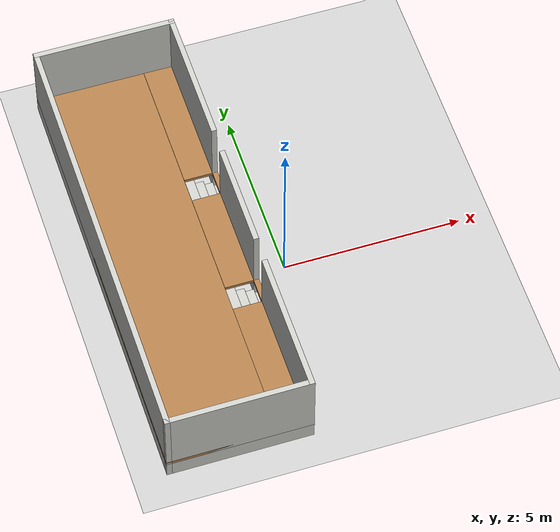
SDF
<sdf version="1.7">
 <world name="default">
  <light name="sun" type="directional">
   <pose>0 0 10 0 -0 0</pose>
   <diffuse>0.8 0.8 0.8 1</diffuse>
   <specular>0.2 0.2 0.2 1</specular>
   <attenuation>
    <range>1000</range>
    <constant>0.9</constant>
    <linear>0.01</linear>
    <quadratic>0.001</quadratic>
   </attenuation>
   <direction>-0.5 0.1 -0.9</direction>
   <spot><inner_angle>0</inner_angle><outer_angle>0</outer_angle><falloff>0</falloff></spot>
  </light>
  <model name="ground_plane">
   <static>1</static>
   <link name="link">
    <collision name="collision">
     <geometry><plane><normal>0 0 1</normal><size>100 100</size></plane></geometry>
     <surface>
      <contact><collide_bitmask>65535</collide_bitmask></contact>
      <friction><ode><mu>100</mu><mu2>50</mu2></ode></friction>
     </surface>
    </collision>
    <visual name="visual">
     <cast_shadows>0</cast_shadows>
     <geometry><plane><normal>0 0 1</normal><size>100 100</size></plane></geometry>
     <material>
      <script><uri>file://media/materials/scripts/gazebo.material</uri><name>Gazebo/Grey</name></script>
     </material>
    </visual>
   </link>
  </model>
  <gravity>0 0 -9.8</gravity>
  <magnetic_field>6e-06 2.3e-05 -4.2e-05</magnetic_field>
  <atmosphere type="adiabatic"/>
  <physics type="ode">
   <max_step_size>0.001</max_step_size>
   <real_time_factor>1</real_time_factor>
   <real_time_update_rate>1000</real_time_update_rate>
  </physics>
  <scene><ambient>0.4 0.4 0.4 1</ambient><background>0.7 0.7 0.7 1</background><shadows>1</shadows></scene>
  <spherical_coordinates>
   <surface_model>EARTH_WGS84</surface_model>
   <latitude_deg>0</latitude_deg>
   <longitude_deg>0</longitude_deg>
   <elevation>0</elevation>
   <heading_deg>0</heading_deg>
  </spherical_coordinates>
  <model name="lab_floor2_wo_door">
   <pose>-1.08693 0.967769 0 0 -0 0</pose>
   <link name="Floor_0">
    <pose>-1.796 0 0.5 0 -0 0</pose>
    <visual name="Floor_0_Visual_0">
     <pose>-0.477952 0 0.05 0 -0 0</pose>
     <geometry><box><size>3.0441 12.4 0.1</size></box></geometry>
     <material>
      <script><uri>file://media/materials/scripts/gazebo.material</uri><name>Gazebo/Wood</name></script>
      <ambient>1 1 1 1</ambient>
     </material>
     <meta><layer>1</layer></meta>
    </visual>
    <collision name="Floor_0_Collision_0">
     <geometry><box><size>3.0441 12.4 0.1</size></box></geometry>
     <pose>-0.477952 0 0.05 0 -0 0</pose>
    </collision>
    <visual name="Floor_0_Visual_1">
     <pose>1.52205 -4.20547 0.05 0 -0 0</pose>
     <geometry><box><size>0.955904 3.98906 0.1</size></box></geometry>
     <material>
      <script><uri>file://media/materials/scripts/gazebo.material</uri><name>Gazebo/Wood</name></script>
      <ambient>1 1 1 1</ambient>
     </material>
     <meta><layer>1</layer></meta>
    </visual>
    <collision name="Floor_0_Collision_1">
     <geometry><box><size>0.955904 3.98906 0.1</size></box></geometry>
     <pose>1.52205 -4.20547 0.05 0 -0 0</pose>
    </collision>
    <visual name="Floor_0_Visual_2">
     <pose>1.92505 -0.361688 0.05 0 -0 0</pose>
     <geometry><box><size>0.149904 3.6985 0.1</size></box></geometry>
     <material>
      <script><uri>file://media/materials/scripts/gazebo.material</uri><name>Gazebo/Wood</name></script>
      <ambient>1 1 1 1</ambient>
     </material>
     <meta><layer>1</layer></meta>
    </visual>
    <collision name="Floor_0_Collision_2">
     <geometry><box><size>0.149904 3.6985 0.1</size></box></geometry>
     <pose>1.92505 -0.361688 0.05 0 -0 0</pose>
    </collision>
    <visual name="Floor_0_Visual_3">
     <pose>1.04632 2.35003 0.05 0 -0 0</pose>
     <geometry><box><size>0.004439 7.69994 0.1</size></box></geometry>
     <material>
      <script><uri>file://media/materials/scripts/gazebo.material</uri><name>Gazebo/Wood</name></script>
      <ambient>1 1 1 1</ambient>
     </material>
     <meta><layer>1</layer></meta>
    </visual>
    <collision name="Floor_0_Collision_3">
     <geometry><box><size>0.004439 7.69994 0.1</size></box></geometry>
     <pose>1.04632 2.35003 0.05 0 -0 0</pose>
    </collision>
    <visual name="Floor_0_Visual_4">
     <pose>1.44932 -0.006188 0.05 0 -0 0</pose>
     <geometry><box><size>0.801561 2.9875 0.1</size></box></geometry>
     <material>
      <script><uri>file://media/materials/scripts/gazebo.material</uri><name>Gazebo/Wood</name></script>
      <ambient>1 1 1 1</ambient>
     </material>
     <meta><layer>1</layer></meta>
    </visual>
    <collision name="Floor_0_Collision_4">
     <geometry><box><size>0.801561 2.9875 0.1</size></box></geometry>
     <pose>1.44932 -0.006188 0.05 0 -0 0</pose>
    </collision>
    <visual name="Floor_0_Visual_5">
     <pose>1.92727 3.84378 0.05 0 -0 0</pose>
     <geometry><box><size>0.145465 4.71244 0.1</size></box></geometry>
     <material>
      <script><uri>file://media/materials/scripts/gazebo.material</uri><name>Gazebo/Wood</name></script>
      <ambient>1 1 1 1</ambient>
     </material>
     <meta><layer>1</layer></meta>
    </visual>
    <collision name="Floor_0_Collision_5">
     <geometry><box><size>0.145465 4.71244 0.1</size></box></geometry>
     <pose>1.92727 3.84378 0.05 0 -0 0</pose>
    </collision>
    <visual name="Floor_0_Visual_6">
     <pose>1.44932 4.19928 0.05 0 -0 0</pose>
     <geometry><box><size>0.801561 4.00144 0.1</size></box></geometry>
     <material>
      <script><uri>file://media/materials/scripts/gazebo.material</uri><name>Gazebo/Wood</name></script>
      <ambient>1 1 1 1</ambient>
     </material>
     <meta><layer>1</layer></meta>
    </visual>
    <collision name="Floor_0_Collision_6">
     <geometry><box><size>0.801561 4.00144 0.1</size></box></geometry>
     <pose>1.44932 4.19928 0.05 0 -0 0</pose>
    </collision>
   </link>
   <link name="Stairs_1">
    <visual name="Stairs_1_Visual_0">
     <pose>-0.075798 1.84306 0.083333 0 -0 -1.5708</pose>
     <geometry><box><size>0.711 0.268667 0.166667</size></box></geometry>
     <material>
      <script><uri>file://media/materials/scripts/gazebo.material</uri><name>Gazebo/CeilingTiled</name></script>
      <ambient>0.760784 0.662745 0.627451 1</ambient>
     </material>
     <meta><layer>0</layer></meta>
    </visual>
    <collision name="Stairs_1_Collision_0">
     <geometry><box><size>0.711 0.268667 0.166667</size></box></geometry>
     <pose>-0.075798 1.84306 0.083333 0 -0 -1.5708</pose>
    </collision>
    <visual name="Stairs_1_Visual_1">
     <pose>-0.344464 1.84306 0.25 0 -0 -1.5708</pose>
     <geometry><box><size>0.711 0.268667 0.166667</size></box></geometry>
     <material>
      <script><uri>file://media/materials/scripts/gazebo.material</uri><name>Gazebo/CeilingTiled</name></script>
      <ambient>0.760784 0.662745 0.627451 1</ambient>
     </material>
     <meta><layer>0</layer></meta>
    </visual>
    <collision name="Stairs_1_Collision_1">
     <geometry><box><size>0.711 0.268667 0.166667</size></box></geometry>
     <pose>-0.344464 1.84306 0.25 0 -0 -1.5708</pose>
    </collision>
    <visual name="Stairs_1_Visual_2">
     <pose>-0.613131 1.84306 0.416667 0 -0 -1.5708</pose>
     <geometry><box><size>0.711 0.268667 0.166667</size></box></geometry>
     <material>
      <script><uri>file://media/materials/scripts/gazebo.material</uri><name>Gazebo/CeilingTiled</name></script>
      <ambient>0.760784 0.662745 0.627451 1</ambient>
     </material>
     <meta><layer>0</layer></meta>
    </visual>
    <collision name="Stairs_1_Collision_2">
     <geometry><box><size>0.711 0.268667 0.166667</size></box></geometry>
     <pose>-0.613131 1.84306 0.416667 0 -0 -1.5708</pose>
    </collision>
   </link>
   <link name="Stairs_3">
    <visual name="Stairs_3_Visual_0">
     <pose>-0.080237 -1.85544 0.083333 0 -0 -1.5708</pose>
     <geometry><box><size>0.711 0.268667 0.166667</size></box></geometry>
     <material>
      <script><uri>file://media/materials/scripts/gazebo.material</uri><name>Gazebo/CeilingTiled</name></script>
      <ambient>0.760784 0.662745 0.627451 1</ambient>
     </material>
     <meta><layer>0</layer></meta>
    </visual>
    <collision name="Stairs_3_Collision_0">
     <geometry><box><size>0.711 0.268667 0.166667</size></box></geometry>
     <pose>-0.080237 -1.85544 0.083333 0 -0 -1.5708</pose>
    </collision>
    <visual name="Stairs_3_Visual_1">
     <pose>-0.348904 -1.85544 0.25 0 -0 -1.5708</pose>
     <geometry><box><size>0.711 0.268667 0.166667</size></box></geometry>
     <material>
      <script><uri>file://media/materials/scripts/gazebo.material</uri><name>Gazebo/CeilingTiled</name></script>
      <ambient>0.760784 0.662745 0.627451 1</ambient>
     </material>
     <meta><layer>0</layer></meta>
    </visual>
    <collision name="Stairs_3_Collision_1">
     <geometry><box><size>0.711 0.268667 0.166667</size></box></geometry>
     <pose>-0.348904 -1.85544 0.25 0 -0 -1.5708</pose>
    </collision>
    <visual name="Stairs_3_Visual_2">
     <pose>-0.61757 -1.85544 0.416667 0 -0 -1.5708</pose>
     <geometry><box><size>0.711 0.268667 0.166667</size></box></geometry>
     <material>
      <script><uri>file://media/materials/scripts/gazebo.material</uri><name>Gazebo/CeilingTiled</name></script>
      <ambient>0.760784 0.662745 0.627451 1</ambient>
     </material>
     <meta><layer>0</layer></meta>
    </visual>
    <collision name="Stairs_3_Collision_2">
     <geometry><box><size>0.711 0.268667 0.166667</size></box></geometry>
     <pose>-0.61757 -1.85544 0.416667 0 -0 -1.5708</pose>
    </collision>
   </link>
   <link name="Wall_12">
    <collision name="Wall_12_Collision">
     <geometry><box><size>4 0.15 0.5</size></box></geometry>
     <pose>0 0 0.25 0 -0 0</pose>
    </collision>
    <visual name="Wall_12_Visual">
     <pose>0 0 0.25 0 -0 0</pose>
     <geometry><box><size>4 0.15 0.5</size></box></geometry>
     <material>
      <script><uri>file://media/materials/scripts/gazebo.material</uri><name>Gazebo/CeilingTiled</name></script>
      <ambient>0.760784 0.662745 0.627451 1</ambient>
     </material>
     <meta><layer>0</layer></meta>
    </visual>
    <pose>0.129 -4.2 0 0 -0 -1.5708</pose>
   </link>
   <link name="Wall_13">
    <collision name="Wall_13_Collision">
     <geometry><box><size>4 0.15 0.5</size></box></geometry>
     <pose>0 0 0.25 0 -0 0</pose>
    </collision>
    <visual name="Wall_13_Visual">
     <pose>0 0 0.25 0 -0 0</pose>
     <geometry><box><size>4 0.15 0.5</size></box></geometry>
     <material>
      <script><uri>file://media/materials/scripts/gazebo.material</uri><name>Gazebo/CeilingTiled</name></script>
      <ambient>0.760784 0.662745 0.627451 1</ambient>
     </material>
     <meta><layer>0</layer></meta>
    </visual>
    <pose>-1.796 -6.125 0 0 -0 3.14159</pose>
   </link>
   <link name="Wall_14">
    <collision name="Wall_14_Collision">
     <geometry><box><size>12.4 0.15 0.5</size></box></geometry>
     <pose>0 0 0.25 0 -0 0</pose>
    </collision>
    <visual name="Wall_14_Visual">
     <pose>0 0 0.25 0 -0 0</pose>
     <geometry><box><size>12.4 0.15 0.5</size></box></geometry>
     <material>
      <script><uri>file://media/materials/scripts/gazebo.material</uri><name>Gazebo/CeilingTiled</name></script>
      <ambient>0.760784 0.662745 0.627451 1</ambient>
     </material>
     <meta><layer>0</layer></meta>
    </visual>
    <pose>-3.721 0 0 0 -0 1.5708</pose>
   </link>
   <link name="Wall_16">
    <collision name="Wall_16_Collision">
     <geometry><box><size>4 0.15 2</size></box></geometry>
     <pose>0 0 1 0 -0 0</pose>
    </collision>
    <visual name="Wall_16_Visual">
     <pose>0 0 1 0 -0 0</pose>
     <geometry><box><size>4 0.15 2</size></box></geometry>
     <material>
      <script><uri>file://media/materials/scripts/gazebo.material</uri><name>Gazebo/CeilingTiled</name></script>
      <ambient>0.760784 0.662745 0.627451 1</ambient>
     </material>
     <meta><layer>1</layer></meta>
    </visual>
    <pose>-1.796 6.125 0.5 0 -0 0</pose>
   </link>
   <link name="Wall_17">
    <collision name="Wall_17_Collision">
     <geometry><box><size>4 0.15 2</size></box></geometry>
     <pose>0 0 1 0 -0 0</pose>
    </collision>
    <visual name="Wall_17_Visual">
     <pose>0 0 1 0 -0 0</pose>
     <geometry><box><size>4 0.15 2</size></box></geometry>
     <material>
      <script><uri>file://media/materials/scripts/gazebo.material</uri><name>Gazebo/CeilingTiled</name></script>
      <ambient>0.760784 0.662745 0.627451 1</ambient>
     </material>
     <meta><layer>1</layer></meta>
    </visual>
    <pose>0.129 4.2 0.5 0 -0 -1.5708</pose>
   </link>
   <link name="Wall_18">
    <collision name="Wall_18_Collision">
     <geometry><box><size>3 0.15 2</size></box></geometry>
     <pose>0 0 1 0 -0 0</pose>
    </collision>
    <visual name="Wall_18_Visual">
     <pose>0 0 1 0 -0 0</pose>
     <geometry><box><size>3 0.15 2</size></box></geometry>
     <material>
      <script><uri>file://media/materials/scripts/gazebo.material</uri><name>Gazebo/CeilingTiled</name></script>
      <ambient>0.760784 0.662745 0.627451 1</ambient>
     </material>
     <meta><layer>1</layer></meta>
    </visual>
    <pose>0.129 0 0.5 0 -0 -1.5708</pose>
   </link>
   <link name="Wall_19">
    <collision name="Wall_19_Collision">
     <geometry><box><size>4 0.15 2</size></box></geometry>
     <pose>0 0 1 0 -0 0</pose>
    </collision>
    <visual name="Wall_19_Visual">
     <pose>0 0 1 0 -0 0</pose>
     <geometry><box><size>4 0.15 2</size></box></geometry>
     <material>
      <script><uri>file://media/materials/scripts/gazebo.material</uri><name>Gazebo/CeilingTiled</name></script>
      <ambient>0.760784 0.662745 0.627451 1</ambient>
     </material>
     <meta><layer>1</layer></meta>
    </visual>
    <pose>0.129 -4.2 0.5 0 -0 -1.5708</pose>
   </link>
   <link name="Wall_20">
    <collision name="Wall_20_Collision">
     <geometry><box><size>4 0.15 2</size></box></geometry>
     <pose>0 0 1 0 -0 0</pose>
    </collision>
    <visual name="Wall_20_Visual">
     <pose>0 0 1 0 -0 0</pose>
     <geometry><box><size>4 0.15 2</size></box></geometry>
     <material>
      <script><uri>file://media/materials/scripts/gazebo.material</uri><name>Gazebo/CeilingTiled</name></script>
      <ambient>0.760784 0.662745 0.627451 1</ambient>
     </material>
     <meta><layer>1</layer></meta>
    </visual>
    <pose>-1.796 -6.125 0.5 0 -0 3.14159</pose>
   </link>
   <link name="Wall_21">
    <collision name="Wall_21_Collision">
     <geometry><box><size>12.4 0.15 2</size></box></geometry>
     <pose>0 0 1 0 -0 0</pose>
    </collision>
    <visual name="Wall_21_Visual">
     <pose>0 0 1 0 -0 0</pose>
     <geometry><box><size>12.4 0.15 2</size></box></geometry>
     <material>
      <script><uri>file://media/materials/scripts/gazebo.material</uri><name>Gazebo/CeilingTiled</name></script>
      <ambient>0.760784 0.662745 0.627451 1</ambient>
     </material>
     <meta><layer>1</layer></meta>
    </visual>
    <pose>-3.721 0 0.5 0 -0 1.5708</pose>
   </link>
   <link name="Wall_4">
    <collision name="Wall_4_Collision">
     <geometry><box><size>4 0.15 0.5</size></box></geometry>
     <pose>0 0 0.25 0 -0 0</pose>
    </collision>
    <visual name="Wall_4_Visual">
     <pose>0 0 0.25 0 -0 0</pose>
     <geometry><box><size>4 0.15 0.5</size></box></geometry>
     <material>
      <script><uri>file://media/materials/scripts/gazebo.material</uri><name>Gazebo/CeilingTiled</name></script>
      <ambient>0.760784 0.662745 0.627451 1</ambient>
     </material>
     <meta><layer>0</layer></meta>
    </visual>
    <pose>-1.796 6.125 0 0 -0 0</pose>
   </link>
   <link name="Wall_5">
    <collision name="Wall_5_Collision">
     <geometry><box><size>4 0.15 0.5</size></box></geometry>
     <pose>0 0 0.25 0 -0 0</pose>
    </collision>
    <visual name="Wall_5_Visual">
     <pose>0 0 0.25 0 -0 0</pose>
     <geometry><box><size>4 0.15 0.5</size></box></geometry>
     <material>
      <script><uri>file://media/materials/scripts/gazebo.material</uri><name>Gazebo/CeilingTiled</name></script>
      <ambient>0.760784 0.662745 0.627451 1</ambient>
     </material>
     <meta><layer>0</layer></meta>
    </visual>
    <pose>0.129 4.2 0 0 -0 -1.5708</pose>
   </link>
   <link name="Wall_8">
    <collision name="Wall_8_Collision">
     <geometry><box><size>3 0.15 0.5</size></box></geometry>
     <pose>0 0 0.25 0 -0 0</pose>
    </collision>
    <visual name="Wall_8_Visual">
     <pose>0 0 0.25 0 -0 0</pose>
     <geometry><box><size>3 0.15 0.5</size></box></geometry>
     <material>
      <script><uri>file://media/materials/scripts/gazebo.material</uri><name>Gazebo/CeilingTiled</name></script>
      <ambient>0.760784 0.662745 0.627451 1</ambient>
     </material>
     <meta><layer>0</layer></meta>
    </visual>
    <pose>0.129 0 0 0 -0 -1.5708</pose>
   </link>
   <static>1</static>
  </model>
 </world>
</sdf>
